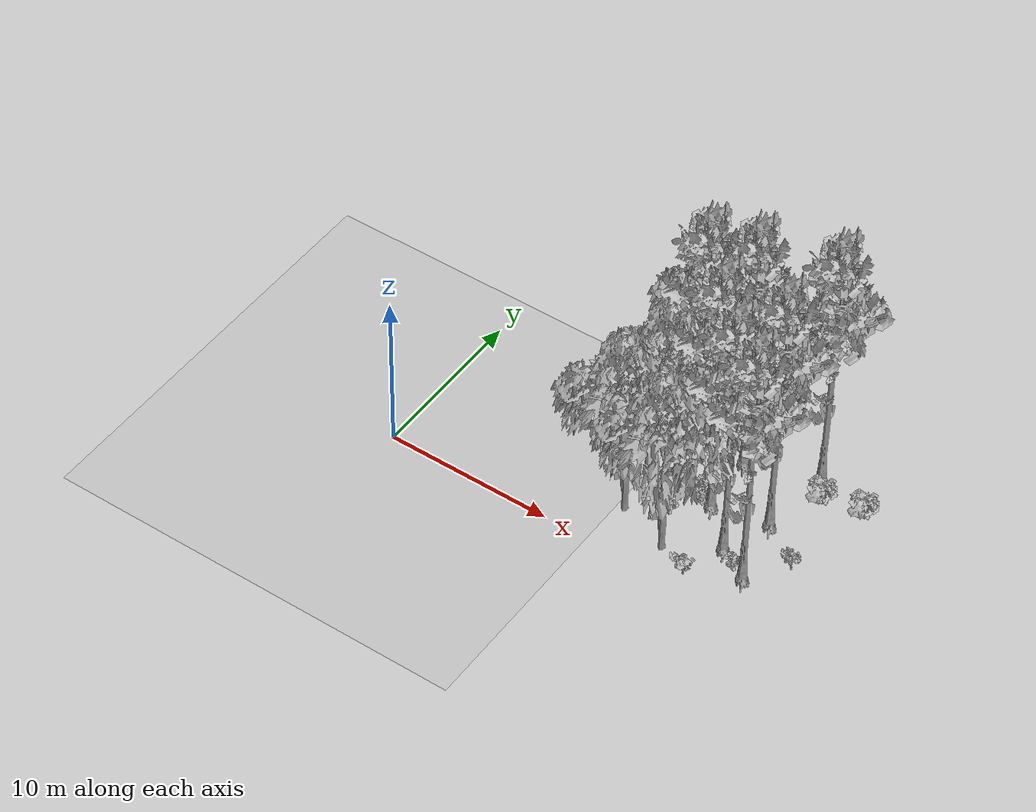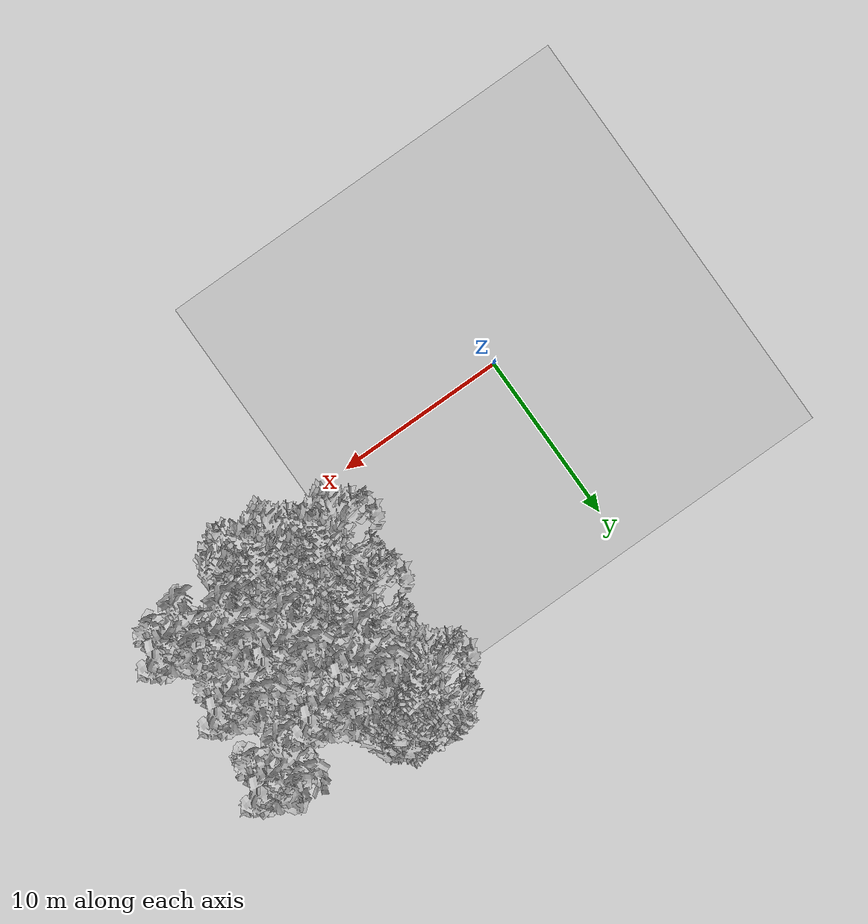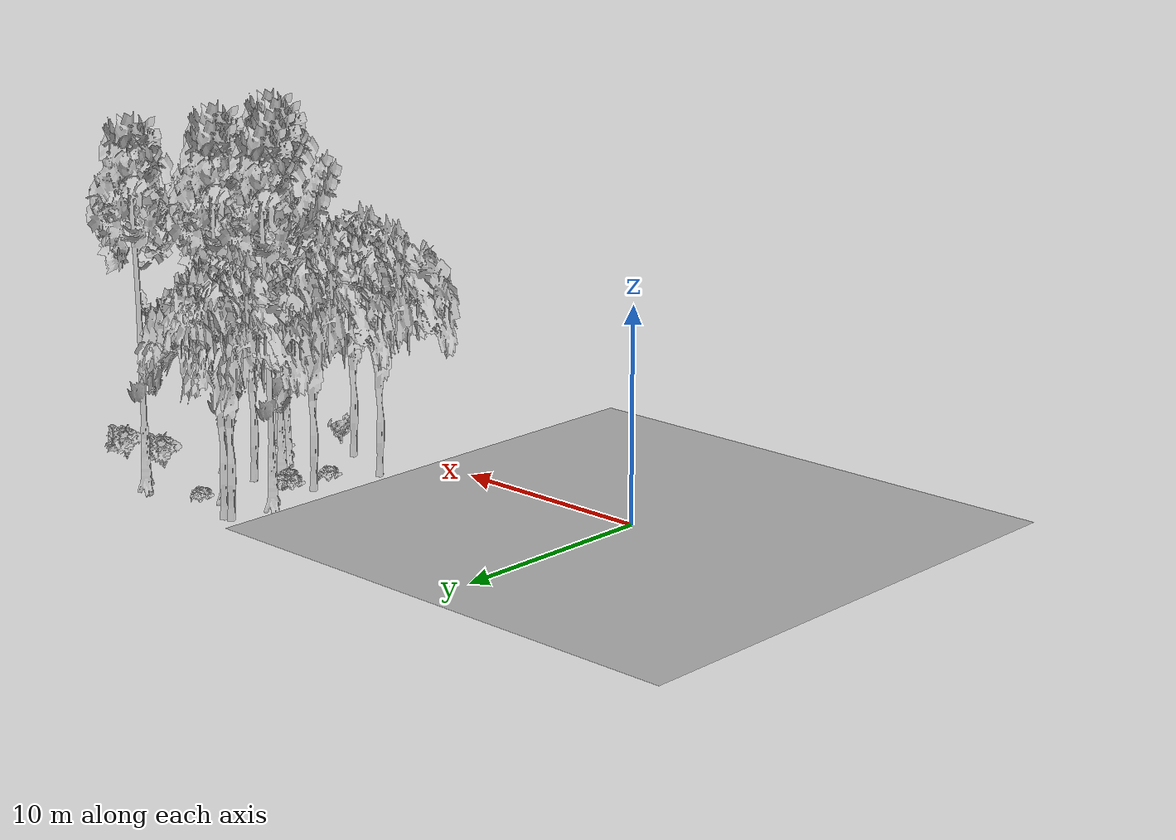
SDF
<sdf version="1.7">
 <world name="default">
  <model name="ground_plane">
   <static>1</static>
   <link name="link">
    <collision name="collision">
     <pose>-50 0 0 0 -0 0</pose>
     <geometry><plane><normal>0 0 1</normal><size>80 80</size></plane></geometry>
     <surface><contact><ode><min_depth>0.01</min_depth><max_vel>0</max_vel></ode></contact></surface>
    </collision>
    <visual name="grass">
     <cast_shadows>0</cast_shadows>
     <geometry>
      <mesh>
       <scale>0.46714285714285714 0.46714285714285714 0.1</scale>
       <uri>file://grass_plane/meshes/grass_plane.dae</uri>
      </mesh>
     </geometry>
    </visual>
   </link>
  </model>
  <model name="Tree 25">
   <static>1</static>
   <pose>16.088227340830457 1.7574123643542947 0 1.57079 -0 0</pose>
   <link name="link">
    <collision name="collision">
     <geometry><mesh><scale>3.5 5 3.5</scale><uri>model://tree_2/meshes/tree_2.obj</uri></mesh></geometry>
    </collision>
    <visual name="visual">
     <geometry><mesh><scale>3.5 5 3.5</scale><uri>model://tree_2/meshes/tree_2.obj</uri></mesh></geometry>
    </visual>
   </link>
  </model>
  <model name="Tree 30">
   <static>1</static>
   <pose>13.537045538951126 11.8044494098448 0 1.57079 -0 0</pose>
   <link name="link">
    <collision name="collision">
     <geometry><mesh><scale>3.5 5 3.5</scale><uri>model://tree_2/meshes/tree_2.obj</uri></mesh></geometry>
    </collision>
    <visual name="visual">
     <geometry><mesh><scale>3.5 5 3.5</scale><uri>model://tree_2/meshes/tree_2.obj</uri></mesh></geometry>
    </visual>
   </link>
  </model>
  <model name="Tree 77">
   <static>1</static>
   <pose>18.827204508454464 3.6785863519048405 0 1.57079 -0 0</pose>
   <link name="link">
    <collision name="collision">
     <geometry><mesh><scale>3.5 5 3.5</scale><uri>model://tree_9/meshes/tree_9.obj</uri></mesh></geometry>
    </collision>
    <visual name="visual">
     <geometry><mesh><scale>3.5 5 3.5</scale><uri>model://tree_9/meshes/tree_9.obj</uri></mesh></geometry>
    </visual>
   </link>
  </model>
  <model name="Tree 124">
   <static>1</static>
   <pose>14.021381107230646 8.670253649694416 0 1.57079 -0 0</pose>
   <link name="link">
    <collision name="collision">
     <geometry><mesh><scale>3.5 5 3.5</scale><uri>model://tree_9/meshes/tree_9.obj</uri></mesh></geometry>
    </collision>
    <visual name="visual">
     <geometry><mesh><scale>3.5 5 3.5</scale><uri>model://tree_9/meshes/tree_9.obj</uri></mesh></geometry>
    </visual>
   </link>
  </model>
  <model name="Tree 167">
   <static>1</static>
   <pose>20.449339041179847 10.873248599759926 0 1.57079 -0 0</pose>
   <link name="link">
    <collision name="collision">
     <geometry><mesh><scale>3.5 5 3.5</scale><uri>model://tree_9/meshes/tree_9.obj</uri></mesh></geometry>
    </collision>
    <visual name="visual">
     <geometry><mesh><scale>3.5 5 3.5</scale><uri>model://tree_9/meshes/tree_9.obj</uri></mesh></geometry>
    </visual>
   </link>
  </model>
  <model name="Tree 287">
   <static>1</static>
   <pose>13.625613871182168 6.4580121613468435 0 1.57079 -0 0</pose>
   <link name="link">
    <collision name="collision">
     <geometry><mesh><scale>3.5 5 3.5</scale><uri>model://tree_2/meshes/tree_2.obj</uri></mesh></geometry>
    </collision>
    <visual name="visual">
     <geometry><mesh><scale>3.5 5 3.5</scale><uri>model://tree_2/meshes/tree_2.obj</uri></mesh></geometry>
    </visual>
   </link>
  </model>
  <model name="Tree 464">
   <static>1</static>
   <pose>16.64096287404798 5.878686416925078 0 1.57079 -0 0</pose>
   <link name="link">
    <collision name="collision">
     <geometry><mesh><scale>3.5 5 3.5</scale><uri>model://tree_9/meshes/tree_9.obj</uri></mesh></geometry>
    </collision>
    <visual name="visual">
     <geometry><mesh><scale>3.5 5 3.5</scale><uri>model://tree_9/meshes/tree_9.obj</uri></mesh></geometry>
    </visual>
   </link>
  </model>
  <model name="Tree 477">
   <static>1</static>
   <pose>12.970983431903889 2.942231603149672 0 1.57079 -0 0</pose>
   <link name="link">
    <collision name="collision">
     <geometry><mesh><scale>3.5 5 3.5</scale><uri>model://tree_2/meshes/tree_2.obj</uri></mesh></geometry>
    </collision>
    <visual name="visual">
     <geometry><mesh><scale>3.5 5 3.5</scale><uri>model://tree_2/meshes/tree_2.obj</uri></mesh></geometry>
    </visual>
   </link>
  </model>
  <model name="Tree 486">
   <static>1</static>
   <pose>16.403005794560272 9.494398748332912 0 1.57079 -0 0</pose>
   <link name="link">
    <collision name="collision">
     <geometry><mesh><scale>3.5 5 3.5</scale><uri>model://tree_9/meshes/tree_9.obj</uri></mesh></geometry>
    </collision>
    <visual name="visual">
     <geometry><mesh><scale>3.5 5 3.5</scale><uri>model://tree_9/meshes/tree_9.obj</uri></mesh></geometry>
    </visual>
   </link>
  </model>
  <model name="Tree 520">
   <static>1</static>
   <pose>20.744593932670973 2.504958238844644 0 1.57079 -0 0</pose>
   <link name="link">
    <collision name="collision">
     <geometry><mesh><scale>3.5 5 3.5</scale><uri>model://tree_9/meshes/tree_9.obj</uri></mesh></geometry>
    </collision>
    <visual name="visual">
     <geometry><mesh><scale>3.5 5 3.5</scale><uri>model://tree_9/meshes/tree_9.obj</uri></mesh></geometry>
    </visual>
   </link>
  </model>
  <model name="Tree 539">
   <static>1</static>
   <pose>13.149390172827118 11.705866710437107 0 1.57079 -0 0</pose>
   <link name="link">
    <collision name="collision">
     <geometry><mesh><scale>3.5 5 3.5</scale><uri>model://tree_2/meshes/tree_2.obj</uri></mesh></geometry>
    </collision>
    <visual name="visual">
     <geometry><mesh><scale>3.5 5 3.5</scale><uri>model://tree_2/meshes/tree_2.obj</uri></mesh></geometry>
    </visual>
   </link>
  </model>
  <model name="Tree 582">
   <static>1</static>
   <pose>19.904530834664115 6.515913487688252 0 1.57079 -0 0</pose>
   <link name="link">
    <collision name="collision">
     <geometry><mesh><scale>3.5 5 3.5</scale><uri>model://tree_9/meshes/tree_9.obj</uri></mesh></geometry>
    </collision>
    <visual name="visual">
     <geometry><mesh><scale>3.5 5 3.5</scale><uri>model://tree_9/meshes/tree_9.obj</uri></mesh></geometry>
    </visual>
   </link>
  </model>
  <model name="Tree 595">
   <static>1</static>
   <pose>16.655946598912763 7.4568450699577085 0 1.57079 -0 0</pose>
   <link name="link">
    <collision name="collision">
     <geometry><mesh><scale>3.5 5 3.5</scale><uri>model://tree_2/meshes/tree_2.obj</uri></mesh></geometry>
    </collision>
    <visual name="visual">
     <geometry><mesh><scale>3.5 5 3.5</scale><uri>model://tree_2/meshes/tree_2.obj</uri></mesh></geometry>
    </visual>
   </link>
  </model>
  <model name="Bush 11">
   <static>1</static>
   <pose>15.531665750012365 6.865612513415165 0 1.57079 -0 0</pose>
   <link name="link">
    <collision name="collision">
     <geometry><mesh><scale>2 2 2</scale><uri>model://bush_2/meshes/bush_2.obj</uri></mesh></geometry>
     <surface><contact><collide_without_contact>false</collide_without_contact></contact></surface>
    </collision>
    <visual name="visual">
     <geometry><mesh><scale>2 2 2</scale><uri>model://bush_2/meshes/bush_2.obj</uri></mesh></geometry>
    </visual>
   </link>
  </model>
  <model name="Bush 47">
   <static>1</static>
   <pose>14.81876310051036 4.477038052693743 0 1.57079 -0 0</pose>
   <link name="link">
    <collision name="collision">
     <geometry><mesh><scale>2 2 2</scale><uri>model://bush_2/meshes/bush_2.obj</uri></mesh></geometry>
     <surface><contact><collide_without_contact>false</collide_without_contact></contact></surface>
    </collision>
    <visual name="visual">
     <geometry><mesh><scale>2 2 2</scale><uri>model://bush_2/meshes/bush_2.obj</uri></mesh></geometry>
    </visual>
   </link>
  </model>
  <model name="Bush 120">
   <static>1</static>
   <pose>16.748770905921077 10.529702474344546 0 1.57079 -0 0</pose>
   <link name="link">
    <collision name="collision">
     <geometry><mesh><scale>2 2 2</scale><uri>model://bush_2/meshes/bush_2.obj</uri></mesh></geometry>
     <surface><contact><collide_without_contact>false</collide_without_contact></contact></surface>
    </collision>
    <visual name="visual">
     <geometry><mesh><scale>2 2 2</scale><uri>model://bush_2/meshes/bush_2.obj</uri></mesh></geometry>
    </visual>
   </link>
  </model>
  <model name="Bush 311">
   <static>1</static>
   <pose>21.287730087328953 9.164889864796464 0 1.57079 -0 0</pose>
   <link name="link">
    <collision name="collision">
     <geometry><mesh><scale>2 2 2</scale><uri>model://bush_1/meshes/bush_1.obj</uri></mesh></geometry>
     <surface><contact><collide_without_contact>false</collide_without_contact></contact></surface>
    </collision>
    <visual name="visual">
     <geometry><mesh><scale>2 2 2</scale><uri>model://bush_1/meshes/bush_1.obj</uri></mesh></geometry>
    </visual>
   </link>
  </model>
  <model name="Bush 337">
   <static>1</static>
   <pose>22.547974906654403 4.433061517079224 0 1.57079 -0 0</pose>
   <link name="link">
    <collision name="collision">
     <geometry><mesh><scale>2 2 2</scale><uri>model://bush_5/meshes/bush_5.obj</uri></mesh></geometry>
     <surface><contact><collide_without_contact>false</collide_without_contact></contact></surface>
    </collision>
    <visual name="visual">
     <geometry><mesh><scale>2 2 2</scale><uri>model://bush_5/meshes/bush_5.obj</uri></mesh></geometry>
    </visual>
   </link>
  </model>
  <model name="Bush 350">
   <static>1</static>
   <pose>18.083870715891443 0.8943695816917199 0 1.57079 -0 0</pose>
   <link name="link">
    <collision name="collision">
     <geometry><mesh><scale>2 2 2</scale><uri>model://bush_0/meshes/bush_0.obj</uri></mesh></geometry>
     <surface><contact><collide_without_contact>false</collide_without_contact></contact></surface>
    </collision>
    <visual name="visual">
     <geometry><mesh><scale>2 2 2</scale><uri>model://bush_0/meshes/bush_0.obj</uri></mesh></geometry>
    </visual>
   </link>
  </model>
  <model name="Bush 364">
   <static>1</static>
   <pose>19.72687924587141 3.1025857220396347 0 1.57079 -0 0</pose>
   <link name="link">
    <collision name="collision">
     <geometry><mesh><scale>2 2 2</scale><uri>model://bush_2/meshes/bush_2.obj</uri></mesh></geometry>
     <surface><contact><collide_without_contact>false</collide_without_contact></contact></surface>
    </collision>
    <visual name="visual">
     <geometry><mesh><scale>2 2 2</scale><uri>model://bush_2/meshes/bush_2.obj</uri></mesh></geometry>
    </visual>
   </link>
  </model>
  <model name="Bush 366">
   <static>1</static>
   <pose>15.09191583383631 6.492947981004214 0 1.57079 -0 0</pose>
   <link name="link">
    <collision name="collision">
     <geometry><mesh><scale>2 2 2</scale><uri>model://bush_2/meshes/bush_2.obj</uri></mesh></geometry>
     <surface><contact><collide_without_contact>false</collide_without_contact></contact></surface>
    </collision>
    <visual name="visual">
     <geometry><mesh><scale>2 2 2</scale><uri>model://bush_2/meshes/bush_2.obj</uri></mesh></geometry>
    </visual>
   </link>
  </model>
  <model name="Bush 385">
   <static>1</static>
   <pose>23.639992090293397 9.557946217381605 0 1.57079 -0 0</pose>
   <link name="link">
    <collision name="collision">
     <geometry><mesh><scale>2 2 2</scale><uri>model://bush_1/meshes/bush_1.obj</uri></mesh></geometry>
     <surface><contact><collide_without_contact>false</collide_without_contact></contact></surface>
    </collision>
    <visual name="visual">
     <geometry><mesh><scale>2 2 2</scale><uri>model://bush_1/meshes/bush_1.obj</uri></mesh></geometry>
    </visual>
   </link>
  </model>
  <model name="Bush 522">
   <static>1</static>
   <pose>15.885851810808767 6.0444865845129385 0 1.57079 -0 0</pose>
   <link name="link">
    <collision name="collision">
     <geometry><mesh><scale>2 2 2</scale><uri>model://bush_2/meshes/bush_2.obj</uri></mesh></geometry>
     <surface><contact><collide_without_contact>false</collide_without_contact></contact></surface>
    </collision>
    <visual name="visual">
     <geometry><mesh><scale>2 2 2</scale><uri>model://bush_2/meshes/bush_2.obj</uri></mesh></geometry>
    </visual>
   </link>
  </model>
 </world>
</sdf>
